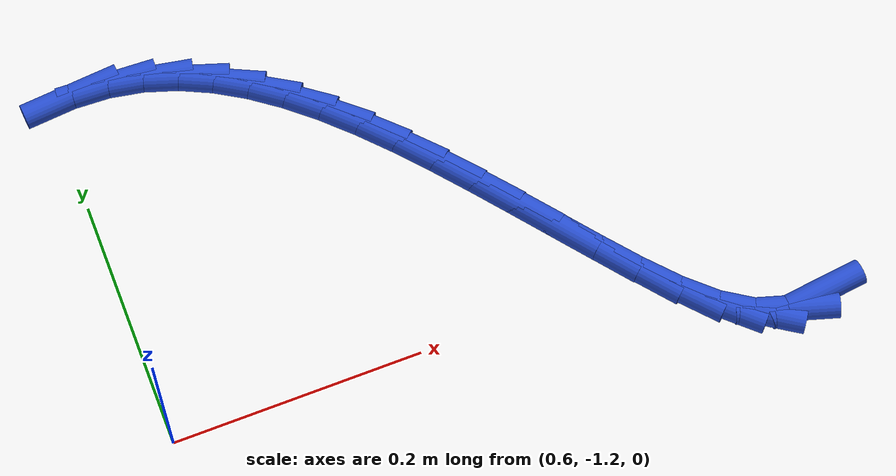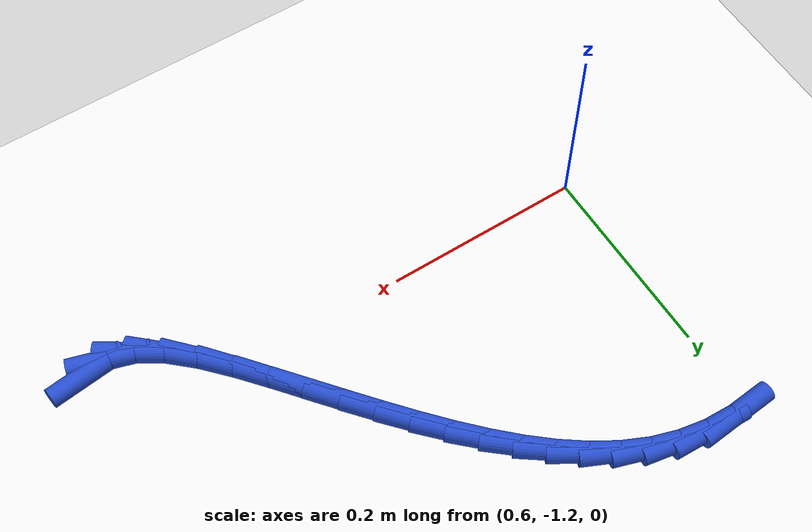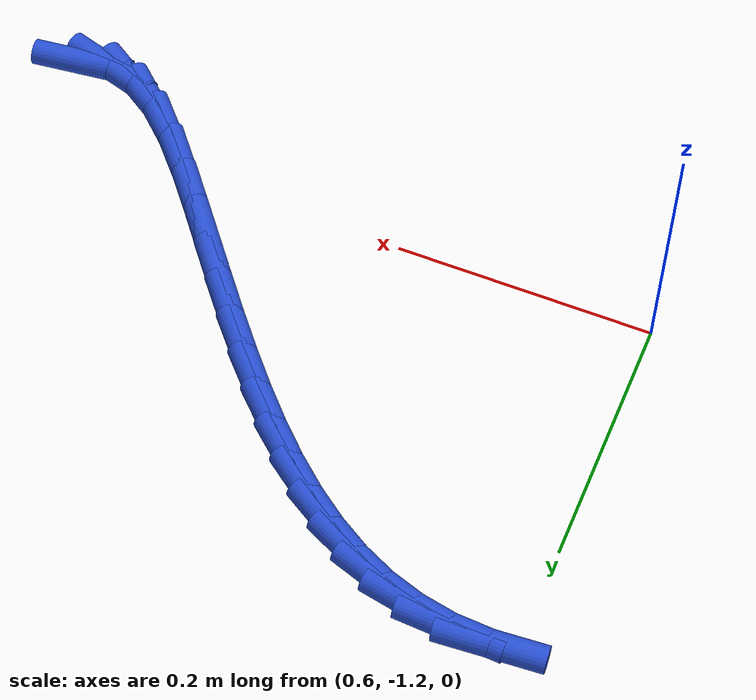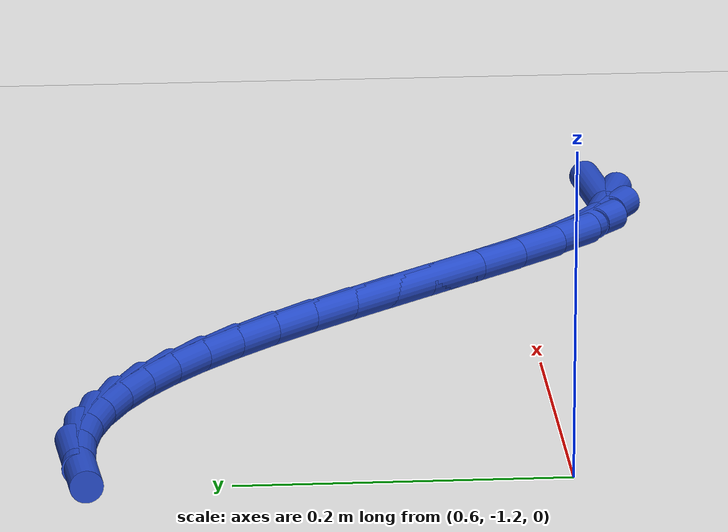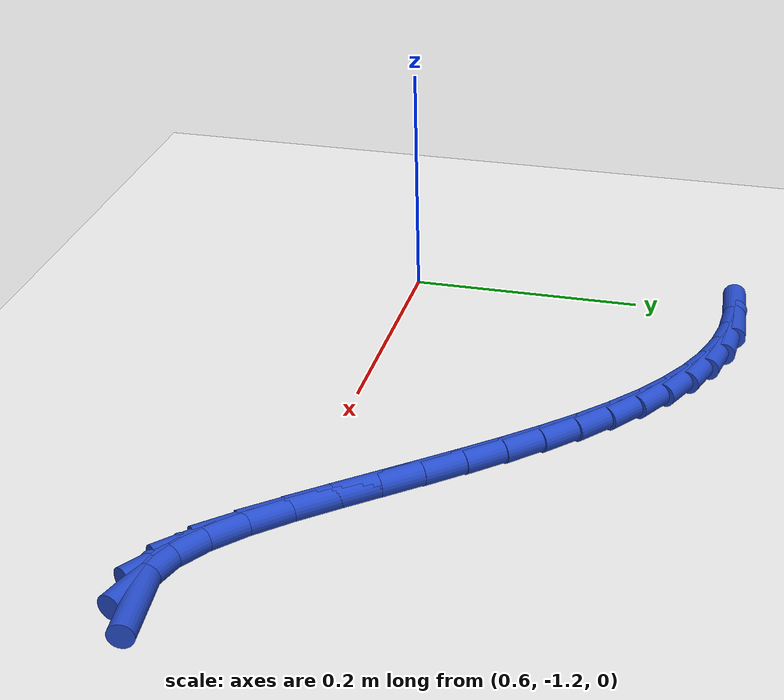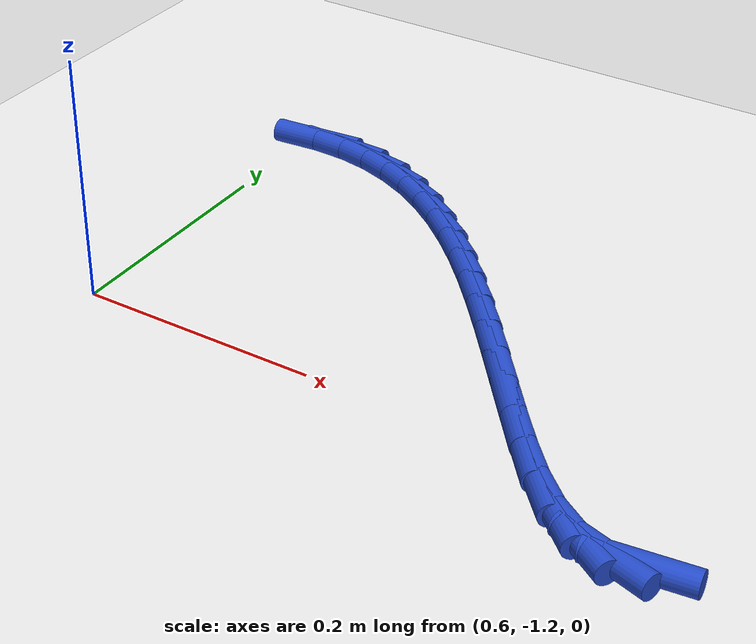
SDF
<sdf version="1.6">
 <world name="default">
  <model name="ground_plane">
   <static>1</static>
   <link name="link">
    <collision name="collision">
     <geometry><plane><normal>0 0 1</normal><size>100 100</size></plane></geometry>
     <surface><friction><ode><mu>100</mu><mu2>50</mu2></ode></friction></surface>
    </collision>
    <visual name="visual">
     <cast_shadows>0</cast_shadows>
     <geometry><plane><normal>0 0 1</normal><size>100 100</size></plane></geometry>
     <material>
      <script><uri>file://media/materials/scripts/gazebo.material</uri><name>Gazebo/WhiteGlow</name></script>
     </material>
    </visual>
   </link>
  </model>
  <model name="line">
   <link name="link_187">
    <pose>1.0965950560014768 -1.2659091541031857 0.01 0 1.57 0.11752493694458939</pose>
    <collision name="collision">
     <geometry><cylinder><radius>0.01</radius><length>0.08</length></cylinder></geometry>
    </collision>
    <visual name="visual">
     <material>
      <script><name>Gazebo/Blue</name><uri>file://media/materials/scripts/gazebo.material</uri></script>
     </material>
     <geometry><cylinder><radius>0.01</radius><length>0.08</length></cylinder></geometry>
    </visual>
   </link>
   <link name="link_188">
    <pose>1.0725770204527958 -1.2687449403190105 0.01 0 1.57 -0.2931155858416019</pose>
    <collision name="collision">
     <geometry><cylinder><radius>0.01</radius><length>0.08</length></cylinder></geometry>
    </collision>
    <visual name="visual">
     <material>
      <script><name>Gazebo/Blue</name><uri>file://media/materials/scripts/gazebo.material</uri></script>
     </material>
     <geometry><cylinder><radius>0.01</radius><length>0.08</length></cylinder></geometry>
    </visual>
   </link>
   <link name="link_189">
    <pose>1.048509020705471 -1.2614810017571905 0.01 0 1.57 -0.5765020377658631</pose>
    <collision name="collision">
     <geometry><cylinder><radius>0.01</radius><length>0.08</length></cylinder></geometry>
    </collision>
    <visual name="visual">
     <material>
      <script><name>Gazebo/Blue</name><uri>file://media/materials/scripts/gazebo.material</uri></script>
     </material>
     <geometry><cylinder><radius>0.01</radius><length>0.08</length></cylinder></geometry>
    </visual>
   </link>
   <link name="link_190">
    <pose>1.0244954836398008 -1.2458678703269666 0.01 0 1.57 -0.7416491055393891</pose>
    <collision name="collision">
     <geometry><cylinder><radius>0.01</radius><length>0.08</length></cylinder></geometry>
    </collision>
    <visual name="visual">
     <material>
      <script><name>Gazebo/Blue</name><uri>file://media/materials/scripts/gazebo.material</uri></script>
     </material>
     <geometry><cylinder><radius>0.01</radius><length>0.08</length></cylinder></geometry>
    </visual>
   </link>
   <link name="link_191">
    <pose>1.0006521783209077 -1.2240245864072192 0.01 0 1.57 -0.8337750362787516</pose>
    <collision name="collision">
     <geometry><cylinder><radius>0.01</radius><length>0.08</length></cylinder></geometry>
    </collision>
    <visual name="visual">
     <material>
      <script><name>Gazebo/Blue</name><uri>file://media/materials/scripts/gazebo.material</uri></script>
     </material>
     <geometry><cylinder><radius>0.01</radius><length>0.08</length></cylinder></geometry>
    </visual>
   </link>
   <link name="link_192">
    <pose>0.9770948738139134 -1.1980701903768272 0.01 0 1.57 -0.8788776821984997</pose>
    <collision name="collision">
     <geometry><cylinder><radius>0.01</radius><length>0.08</length></cylinder></geometry>
    </collision>
    <visual name="visual">
     <material>
      <script><name>Gazebo/Blue</name><uri>file://media/materials/scripts/gazebo.material</uri></script>
     </material>
     <geometry><cylinder><radius>0.01</radius><length>0.08</length></cylinder></geometry>
    </visual>
   </link>
   <link name="link_193">
    <pose>0.9539393353043467 -1.1701236950680776 0.01 0 1.57 -0.8927500633002468</pose>
    <collision name="collision">
     <geometry><cylinder><radius>0.01</radius><length>0.08</length></cylinder></geometry>
    </collision>
    <visual name="visual">
     <material>
      <script><name>Gazebo/Blue</name><uri>file://media/materials/scripts/gazebo.material</uri></script>
     </material>
     <geometry><cylinder><radius>0.01</radius><length>0.08</length></cylinder></geometry>
    </visual>
   </link>
   <link name="link_194">
    <pose>0.9312523463653687 -1.1419563251371039 0.01 0 1.57 -0.8948233623192421</pose>
    <collision name="collision">
     <geometry><cylinder><radius>0.01</radius><length>0.08</length></cylinder></geometry>
    </collision>
    <visual name="visual">
     <material>
      <script><name>Gazebo/Blue</name><uri>file://media/materials/scripts/gazebo.material</uri></script>
     </material>
     <geometry><cylinder><radius>0.01</radius><length>0.08</length></cylinder></geometry>
    </visual>
   </link>
   <link name="link_195">
    <pose>0.9089293883772565 -1.1141229941724136 0.01 0 1.57 -0.8886425088995008</pose>
    <collision name="collision">
     <geometry><cylinder><radius>0.01</radius><length>0.08</length></cylinder></geometry>
    </collision>
    <visual name="visual">
     <material>
      <script><name>Gazebo/Blue</name><uri>file://media/materials/scripts/gazebo.material</uri></script>
     </material>
     <geometry><cylinder><radius>0.01</radius><length>0.08</length></cylinder></geometry>
    </visual>
   </link>
   <link name="link_196">
    <pose>0.8868285163662313 -1.086912874338585 0.01 0 1.57 -0.8736850542755087</pose>
    <collision name="collision">
     <geometry><cylinder><radius>0.01</radius><length>0.08</length></cylinder></geometry>
    </collision>
    <visual name="visual">
     <material>
      <script><name>Gazebo/Blue</name><uri>file://media/materials/scripts/gazebo.material</uri></script>
     </material>
     <geometry><cylinder><radius>0.01</radius><length>0.08</length></cylinder></geometry>
    </visual>
   </link>
   <link name="link_197">
    <pose>0.8648077853585148 -1.0606151378001978 0.01 0 1.57 -0.8491887345630992</pose>
    <collision name="collision">
     <geometry><cylinder><radius>0.01</radius><length>0.08</length></cylinder></geometry>
    </collision>
    <visual name="visual">
     <material>
      <script><name>Gazebo/Blue</name><uri>file://media/materials/scripts/gazebo.material</uri></script>
     </material>
     <geometry><cylinder><radius>0.01</radius><length>0.08</length></cylinder></geometry>
    </visual>
   </link>
   <link name="link_198">
    <pose>0.842725250380329 -1.0355189567218304 0.01 0 1.57 -0.814135501491991</pose>
    <collision name="collision">
     <geometry><cylinder><radius>0.01</radius><length>0.08</length></cylinder></geometry>
    </collision>
    <visual name="visual">
     <material>
      <script><name>Gazebo/Blue</name><uri>file://media/materials/scripts/gazebo.material</uri></script>
     </material>
     <geometry><cylinder><radius>0.01</radius><length>0.08</length></cylinder></geometry>
    </visual>
   </link>
   <link name="link_199">
    <pose>0.820438966457895 -1.0119135032680617 0.01 0 1.57 -0.7672609497480991</pose>
    <collision name="collision">
     <geometry><cylinder><radius>0.01</radius><length>0.08</length></cylinder></geometry>
    </collision>
    <visual name="visual">
     <material>
      <script><name>Gazebo/Blue</name><uri>file://media/materials/scripts/gazebo.material</uri></script>
     </material>
     <geometry><cylinder><radius>0.01</radius><length>0.08</length></cylinder></geometry>
    </visual>
   </link>
   <link name="link_200">
    <pose>0.7978069886174342 -0.9900879496034708 0.01 0 1.57 -0.7071199813397453</pose>
    <collision name="collision">
     <geometry><cylinder><radius>0.01</radius><length>0.08</length></cylinder></geometry>
    </collision>
    <visual name="visual">
     <material>
      <script><name>Gazebo/Blue</name><uri>file://media/materials/scripts/gazebo.material</uri></script>
     </material>
     <geometry><cylinder><radius>0.01</radius><length>0.08</length></cylinder></geometry>
    </visual>
   </link>
   <link name="link_201">
    <pose>0.7746873718851687 -0.9703314678926368 0.01 0 1.57 -0.6322600958385293</pose>
    <collision name="collision">
     <geometry><cylinder><radius>0.01</radius><length>0.08</length></cylinder></geometry>
    </collision>
    <visual name="visual">
     <material>
      <script><name>Gazebo/Blue</name><uri>file://media/materials/scripts/gazebo.material</uri></script>
     </material>
     <geometry><cylinder><radius>0.01</radius><length>0.08</length></cylinder></geometry>
    </visual>
   </link>
   <link name="link_202">
    <pose>0.7509381712873195 -0.9529332303001384 0.01 0 1.57 -0.5415697017847562</pose>
    <collision name="collision">
     <geometry><cylinder><radius>0.01</radius><length>0.08</length></cylinder></geometry>
    </collision>
    <visual name="visual">
     <material>
      <script><name>Gazebo/Blue</name><uri>file://media/materials/scripts/gazebo.material</uri></script>
     </material>
     <geometry><cylinder><radius>0.01</radius><length>0.08</length></cylinder></geometry>
    </visual>
   </link>
   <link name="link_203">
    <pose>0.7264174418501084 -0.9381824089905544 0.01 0 1.57 -0.4348479560405169</pose>
    <collision name="collision">
     <geometry><cylinder><radius>0.01</radius><length>0.08</length></cylinder></geometry>
    </collision>
    <visual name="visual">
     <material>
      <script><name>Gazebo/Blue</name><uri>file://media/materials/scripts/gazebo.material</uri></script>
     </material>
     <geometry><cylinder><radius>0.01</radius><length>0.08</length></cylinder></geometry>
    </visual>
   </link>
   <link name="link_204">
    <pose>0.700983238599757 -0.9263681761284638 0.01 0 1.57 -0.3135264929684674</pose>
    <collision name="collision">
     <geometry><cylinder><radius>0.01</radius><length>0.08</length></cylinder></geometry>
    </collision>
    <visual name="visual">
     <material>
      <script><name>Gazebo/Blue</name><uri>file://media/materials/scripts/gazebo.material</uri></script>
     </material>
     <geometry><cylinder><radius>0.01</radius><length>0.08</length></cylinder></geometry>
    </visual>
   </link>
   <link name="link_205">
    <pose>0.6744936165624869 -0.9177797038784458 0.01 0 1.57 -0.18123563170353407</pose>
    <collision name="collision">
     <geometry><cylinder><radius>0.01</radius><length>0.08</length></cylinder></geometry>
    </collision>
    <visual name="visual">
     <material>
      <script><name>Gazebo/Blue</name><uri>file://media/materials/scripts/gazebo.material</uri></script>
     </material>
     <geometry><cylinder><radius>0.01</radius><length>0.08</length></cylinder></geometry>
    </visual>
   </link>
   <link name="link_206">
    <pose>0.646806630764519 -0.9127061644050789 0.01 0 1.57 -0.04376347461858296</pose>
    <collision name="collision">
     <geometry><cylinder><radius>0.01</radius><length>0.08</length></cylinder></geometry>
    </collision>
    <visual name="visual">
     <material>
      <script><name>Gazebo/Blue</name><uri>file://media/materials/scripts/gazebo.material</uri></script>
     </material>
     <geometry><cylinder><radius>0.01</radius><length>0.08</length></cylinder></geometry>
    </visual>
   </link>
   <link name="link_207">
    <pose>0.6177810825230964 -0.9114350939886692 0.01 0 1.57 0.08127101081610737</pose>
    <collision name="collision">
     <geometry><cylinder><radius>0.01</radius><length>0.08</length></cylinder></geometry>
    </collision>
    <visual name="visual">
     <material>
      <script><name>Gazebo/Blue</name><uri>file://media/materials/scripts/gazebo.material</uri></script>
     </material>
     <geometry><cylinder><radius>0.01</radius><length>0.08</length></cylinder></geometry>
    </visual>
   </link>
  </model>
 </world>
</sdf>
